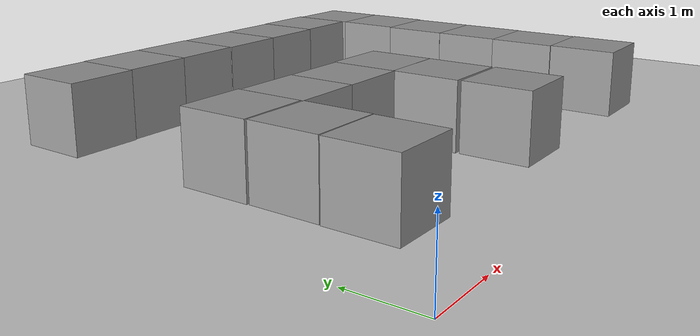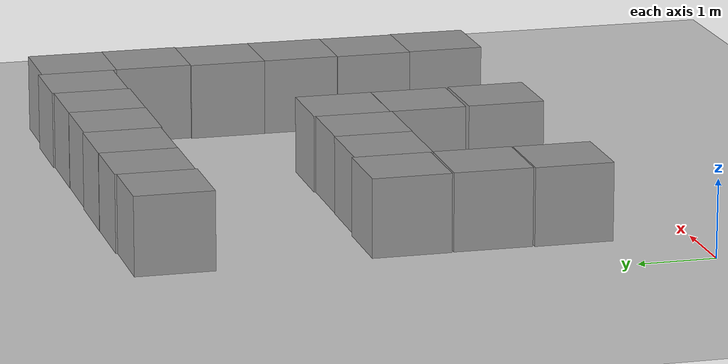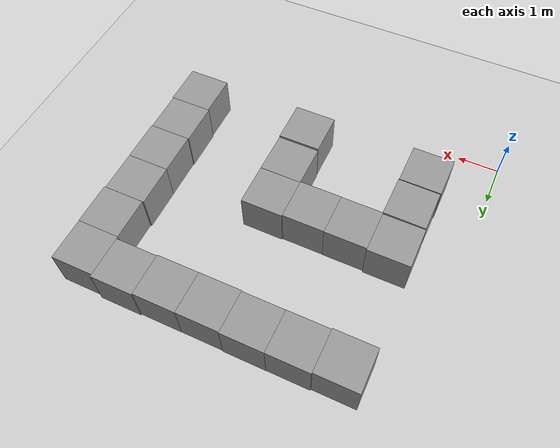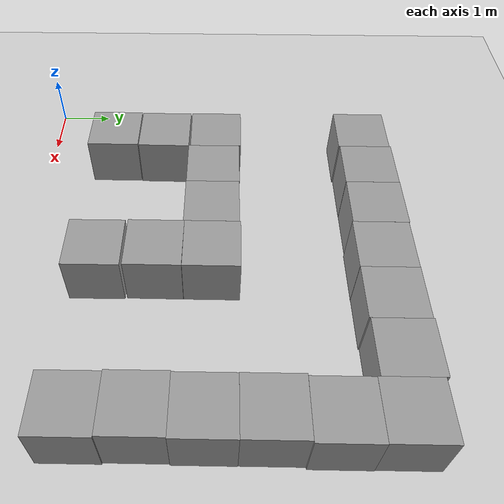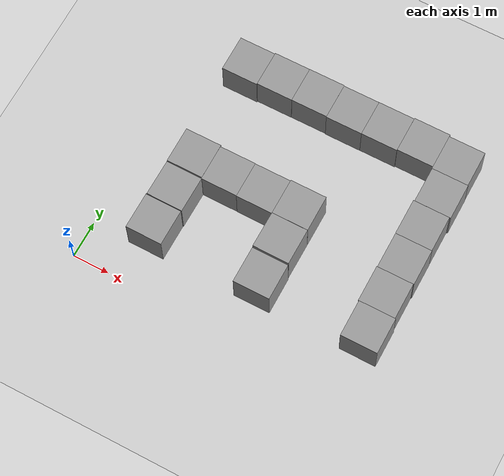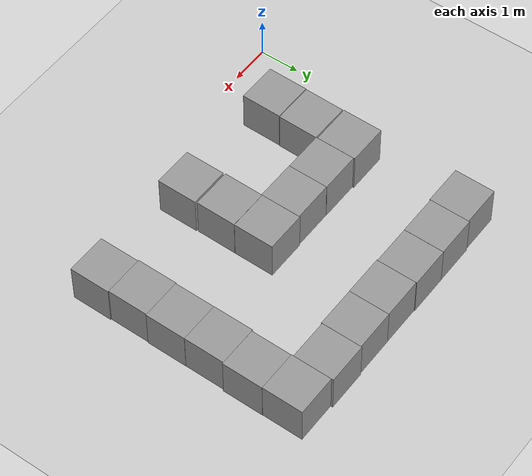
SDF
<sdf version="1.4">
 <world name="default">
  <model name="ground_plane">
   <static>1</static>
   <link name="link">
    <collision name="collision">
     <geometry><plane><normal>0 0 1</normal><size>100 100</size></plane></geometry>
     <surface><friction><ode><mu>100</mu><mu2>50</mu2></ode></friction></surface>
    </collision>
    <visual name="visual">
     <cast_shadows>0</cast_shadows>
     <geometry><plane><normal>0 0 1</normal><size>100 100</size></plane></geometry>
     <material>
      <script><uri>file://media/materials/scripts/gazebo.material</uri><name>Gazebo/Grey</name></script>
     </material>
    </visual>
    <velocity_decay><linear>0</linear><angular>0</angular></velocity_decay>
   </link>
  </model>
  <model name="unit_box_22">
   <pose>1.54245 3.52784 0.5 0 -0 -0.00143</pose>
   <link name="link">
    <inertial>
     <mass>1</mass>
     <inertia><ixx>1</ixx><ixy>0</ixy><ixz>0</ixz><iyy>1</iyy><iyz>0</iyz><izz>1</izz></inertia>
    </inertial>
    <collision name="collision"><geometry><box><size>1 1 1</size></box></geometry></collision>
    <visual name="visual">
     <geometry><box><size>1 1 1</size></box></geometry>
     <material>
      <script><uri>file://media/materials/scripts/gazebo.material</uri><name>Gazebo/Grey</name></script>
     </material>
    </visual>
    <velocity_decay><linear>0</linear><angular>0</angular></velocity_decay>
   </link>
   <static>0</static>
  </model>
  <model name="unit_box_26">
   <pose>1.54774 2.49757 0.5 0 0 -0.011987</pose>
   <link name="link">
    <inertial>
     <mass>1</mass>
     <inertia><ixx>1</ixx><ixy>0</ixy><ixz>0</ixz><iyy>1</iyy><iyz>0</iyz><izz>1</izz></inertia>
    </inertial>
    <collision name="collision"><geometry><box><size>1 1 1</size></box></geometry></collision>
    <visual name="visual">
     <geometry><box><size>1 1 1</size></box></geometry>
     <material>
      <script><uri>file://media/materials/scripts/gazebo.material</uri><name>Gazebo/Grey</name></script>
     </material>
    </visual>
    <velocity_decay><linear>0</linear><angular>0</angular></velocity_decay>
   </link>
   <static>0</static>
  </model>
  <model name="unit_box_27">
   <pose>1.52758 1.47954 0.5 -0 -0 -0.00592</pose>
   <link name="link">
    <inertial>
     <mass>1</mass>
     <inertia><ixx>1</ixx><ixy>0</ixy><ixz>0</ixz><iyy>1</iyy><iyz>0</iyz><izz>1</izz></inertia>
    </inertial>
    <collision name="collision"><geometry><box><size>1 1 1</size></box></geometry></collision>
    <visual name="visual">
     <geometry><box><size>1 1 1</size></box></geometry>
     <material>
      <script><uri>file://media/materials/scripts/gazebo.material</uri><name>Gazebo/Grey</name></script>
     </material>
    </visual>
    <velocity_decay><linear>0</linear><angular>0</angular></velocity_decay>
   </link>
   <static>0</static>
  </model>
  <model name="unit_box_33">
   <pose>2.54273 3.49233 0.5 0 -0 -0.002111</pose>
   <link name="link">
    <inertial>
     <mass>1</mass>
     <inertia><ixx>1</ixx><ixy>0</ixy><ixz>0</ixz><iyy>1</iyy><iyz>0</iyz><izz>1</izz></inertia>
    </inertial>
    <collision name="collision"><geometry><box><size>1 1 1</size></box></geometry></collision>
    <visual name="visual">
     <geometry><box><size>1 1 1</size></box></geometry>
     <material>
      <script><uri>file://media/materials/scripts/gazebo.material</uri><name>Gazebo/Grey</name></script>
     </material>
    </visual>
    <velocity_decay><linear>0</linear><angular>0</angular></velocity_decay>
   </link>
   <static>0</static>
  </model>
  <model name="unit_box_34">
   <pose>3.54273 3.48458 0.5 1e-06 4.1359e-25 -0.002128</pose>
   <link name="link">
    <inertial>
     <mass>1</mass>
     <inertia><ixx>1</ixx><ixy>0</ixy><ixz>0</ixz><iyy>1</iyy><iyz>0</iyz><izz>1</izz></inertia>
    </inertial>
    <collision name="collision"><geometry><box><size>1 1 1</size></box></geometry></collision>
    <visual name="visual">
     <geometry><box><size>1 1 1</size></box></geometry>
     <material>
      <script><uri>file://media/materials/scripts/gazebo.material</uri><name>Gazebo/Grey</name></script>
     </material>
    </visual>
    <velocity_decay><linear>0</linear><angular>0</angular></velocity_decay>
   </link>
   <static>0</static>
  </model>
  <model name="unit_box_35">
   <pose>4.54285 3.50398 0.5 -1e-06 -0 -0.00227</pose>
   <link name="link">
    <inertial>
     <mass>1</mass>
     <inertia><ixx>1</ixx><ixy>0</ixy><ixz>0</ixz><iyy>1</iyy><iyz>0</iyz><izz>1</izz></inertia>
    </inertial>
    <collision name="collision"><geometry><box><size>1 1 1</size></box></geometry></collision>
    <visual name="visual">
     <geometry><box><size>1 1 1</size></box></geometry>
     <material>
      <script><uri>file://media/materials/scripts/gazebo.material</uri><name>Gazebo/Grey</name></script>
     </material>
    </visual>
    <velocity_decay><linear>0</linear><angular>0</angular></velocity_decay>
   </link>
   <static>0</static>
  </model>
  <model name="unit_box_36">
   <pose>4.53877 2.50209 0.5 -0 -0 -0.006055</pose>
   <link name="link">
    <inertial>
     <mass>1</mass>
     <inertia><ixx>1</ixx><ixy>0</ixy><ixz>0</ixz><iyy>1</iyy><iyz>0</iyz><izz>1</izz></inertia>
    </inertial>
    <collision name="collision"><geometry><box><size>1 1 1</size></box></geometry></collision>
    <visual name="visual">
     <geometry><box><size>1 1 1</size></box></geometry>
     <material>
      <script><uri>file://media/materials/scripts/gazebo.material</uri><name>Gazebo/Grey</name></script>
     </material>
    </visual>
    <velocity_decay><linear>0</linear><angular>0</angular></velocity_decay>
   </link>
   <static>0</static>
  </model>
  <model name="unit_box_37">
   <pose>4.55127 1.45925 0.5 0 -0 0</pose>
   <link name="link">
    <inertial>
     <mass>1</mass>
     <inertia><ixx>1</ixx><ixy>0</ixy><ixz>0</ixz><iyy>1</iyy><iyz>0</iyz><izz>1</izz></inertia>
    </inertial>
    <collision name="collision"><geometry><box><size>1 1 1</size></box></geometry></collision>
    <visual name="visual">
     <geometry><box><size>1 1 1</size></box></geometry>
     <material>
      <script><uri>file://media/materials/scripts/gazebo.material</uri><name>Gazebo/Grey</name></script>
     </material>
    </visual>
    <velocity_decay><linear>0</linear><angular>0</angular></velocity_decay>
   </link>
   <static>0</static>
  </model>
  <model name="unit_box_78">
   <pose>1.51534 6.46741 0.5 0 0 -0.000793</pose>
   <link name="link">
    <inertial>
     <mass>1</mass>
     <inertia><ixx>1</ixx><ixy>0</ixy><ixz>0</ixz><iyy>1</iyy><iyz>0</iyz><izz>1</izz></inertia>
    </inertial>
    <collision name="collision"><geometry><box><size>1 1 1</size></box></geometry></collision>
    <visual name="visual">
     <geometry><box><size>1 1 1</size></box></geometry>
     <material>
      <script><uri>file://media/materials/scripts/gazebo.material</uri><name>Gazebo/Grey</name></script>
     </material>
    </visual>
    <velocity_decay><linear>0</linear><angular>0</angular></velocity_decay>
   </link>
   <static>0</static>
  </model>
  <model name="unit_box_79">
   <pose>2.51536 6.49013 0.5 0 -0 -0.0008</pose>
   <link name="link">
    <inertial>
     <mass>1</mass>
     <inertia><ixx>1</ixx><ixy>0</ixy><ixz>0</ixz><iyy>1</iyy><iyz>0</iyz><izz>1</izz></inertia>
    </inertial>
    <collision name="collision"><geometry><box><size>1 1 1</size></box></geometry></collision>
    <visual name="visual">
     <geometry><box><size>1 1 1</size></box></geometry>
     <material>
      <script><uri>file://media/materials/scripts/gazebo.material</uri><name>Gazebo/Grey</name></script>
     </material>
    </visual>
    <velocity_decay><linear>0</linear><angular>0</angular></velocity_decay>
   </link>
   <static>0</static>
  </model>
  <model name="unit_box_80">
   <pose>3.51551 6.49284 0.5 0 -0 -0.000878</pose>
   <link name="link">
    <inertial>
     <mass>1</mass>
     <inertia><ixx>1</ixx><ixy>0</ixy><ixz>0</ixz><iyy>1</iyy><iyz>0</iyz><izz>1</izz></inertia>
    </inertial>
    <collision name="collision"><geometry><box><size>1 1 1</size></box></geometry></collision>
    <visual name="visual">
     <geometry><box><size>1 1 1</size></box></geometry>
     <material>
      <script><uri>file://media/materials/scripts/gazebo.material</uri><name>Gazebo/Grey</name></script>
     </material>
    </visual>
    <velocity_decay><linear>0</linear><angular>0</angular></velocity_decay>
   </link>
   <static>0</static>
  </model>
  <model name="unit_box_81">
   <pose>4.51574 6.47679 0.5 -0 -0 -0.001231</pose>
   <link name="link">
    <inertial>
     <mass>1</mass>
     <inertia><ixx>1</ixx><ixy>0</ixy><ixz>0</ixz><iyy>1</iyy><iyz>0</iyz><izz>1</izz></inertia>
    </inertial>
    <collision name="collision"><geometry><box><size>1 1 1</size></box></geometry></collision>
    <visual name="visual">
     <geometry><box><size>1 1 1</size></box></geometry>
     <material>
      <script><uri>file://media/materials/scripts/gazebo.material</uri><name>Gazebo/Grey</name></script>
     </material>
    </visual>
    <velocity_decay><linear>0</linear><angular>0</angular></velocity_decay>
   </link>
   <static>0</static>
  </model>
  <model name="unit_box_82">
   <pose>5.51576 6.47898 0.5 0 -0 -0.001249</pose>
   <link name="link">
    <inertial>
     <mass>1</mass>
     <inertia><ixx>1</ixx><ixy>0</ixy><ixz>0</ixz><iyy>1</iyy><iyz>0</iyz><izz>1</izz></inertia>
    </inertial>
    <collision name="collision"><geometry><box><size>1 1 1</size></box></geometry></collision>
    <visual name="visual">
     <geometry><box><size>1 1 1</size></box></geometry>
     <material>
      <script><uri>file://media/materials/scripts/gazebo.material</uri><name>Gazebo/Grey</name></script>
     </material>
    </visual>
    <velocity_decay><linear>0</linear><angular>0</angular></velocity_decay>
   </link>
   <static>0</static>
  </model>
  <model name="unit_box_83">
   <pose>6.51585 6.49933 0.5 0 0 -0.001322</pose>
   <link name="link">
    <inertial>
     <mass>1</mass>
     <inertia><ixx>1</ixx><ixy>0</ixy><ixz>0</ixz><iyy>1</iyy><iyz>0</iyz><izz>1</izz></inertia>
    </inertial>
    <collision name="collision"><geometry><box><size>1 1 1</size></box></geometry></collision>
    <visual name="visual">
     <geometry><box><size>1 1 1</size></box></geometry>
     <material>
      <script><uri>file://media/materials/scripts/gazebo.material</uri><name>Gazebo/Grey</name></script>
     </material>
    </visual>
    <velocity_decay><linear>0</linear><angular>0</angular></velocity_decay>
   </link>
   <static>0</static>
  </model>
  <model name="unit_box_85">
   <pose>7.49621 1.4487 0.5 0 -0 -0.000486</pose>
   <link name="link">
    <inertial>
     <mass>1</mass>
     <inertia><ixx>1</ixx><ixy>0</ixy><ixz>0</ixz><iyy>1</iyy><iyz>0</iyz><izz>1</izz></inertia>
    </inertial>
    <collision name="collision"><geometry><box><size>1 1 1</size></box></geometry></collision>
    <visual name="visual">
     <geometry><box><size>1 1 1</size></box></geometry>
     <material>
      <script><uri>file://media/materials/scripts/gazebo.material</uri><name>Gazebo/Grey</name></script>
     </material>
    </visual>
    <velocity_decay><linear>0</linear><angular>0</angular></velocity_decay>
   </link>
   <static>0</static>
  </model>
  <model name="unit_box_86">
   <pose>7.47623 2.44871 0.5 0 -0 -0.000492</pose>
   <link name="link">
    <inertial>
     <mass>1</mass>
     <inertia><ixx>1</ixx><ixy>0</ixy><ixz>0</ixz><iyy>1</iyy><iyz>0</iyz><izz>1</izz></inertia>
    </inertial>
    <collision name="collision"><geometry><box><size>1 1 1</size></box></geometry></collision>
    <visual name="visual">
     <geometry><box><size>1 1 1</size></box></geometry>
     <material>
      <script><uri>file://media/materials/scripts/gazebo.material</uri><name>Gazebo/Grey</name></script>
     </material>
    </visual>
    <velocity_decay><linear>0</linear><angular>0</angular></velocity_decay>
   </link>
   <static>0</static>
  </model>
  <model name="unit_box_87">
   <pose>7.49209 3.44872 0.5 -0 -0 -0.000518</pose>
   <link name="link">
    <inertial>
     <mass>1</mass>
     <inertia><ixx>1</ixx><ixy>0</ixy><ixz>0</ixz><iyy>1</iyy><iyz>0</iyz><izz>1</izz></inertia>
    </inertial>
    <collision name="collision"><geometry><box><size>1 1 1</size></box></geometry></collision>
    <visual name="visual">
     <geometry><box><size>1 1 1</size></box></geometry>
     <material>
      <script><uri>file://media/materials/scripts/gazebo.material</uri><name>Gazebo/Grey</name></script>
     </material>
    </visual>
    <velocity_decay><linear>0</linear><angular>0</angular></velocity_decay>
   </link>
   <static>0</static>
  </model>
  <model name="unit_box_88">
   <pose>7.48931 4.44874 0.5 0 -0 -0.000561</pose>
   <link name="link">
    <inertial>
     <mass>1</mass>
     <inertia><ixx>1</ixx><ixy>0</ixy><ixz>0</ixz><iyy>1</iyy><iyz>0</iyz><izz>1</izz></inertia>
    </inertial>
    <collision name="collision"><geometry><box><size>1 1 1</size></box></geometry></collision>
    <visual name="visual">
     <geometry><box><size>1 1 1</size></box></geometry>
     <material>
      <script><uri>file://media/materials/scripts/gazebo.material</uri><name>Gazebo/Grey</name></script>
     </material>
    </visual>
    <velocity_decay><linear>0</linear><angular>0</angular></velocity_decay>
   </link>
   <static>0</static>
  </model>
  <model name="unit_box_89">
   <pose>7.52215 5.44903 0.5 1e-06 -2.06795e-25 -0.001221</pose>
   <link name="link">
    <inertial>
     <mass>1</mass>
     <inertia><ixx>1</ixx><ixy>0</ixy><ixz>0</ixz><iyy>1</iyy><iyz>0</iyz><izz>1</izz></inertia>
    </inertial>
    <collision name="collision"><geometry><box><size>1 1 1</size></box></geometry></collision>
    <visual name="visual">
     <geometry><box><size>1 1 1</size></box></geometry>
     <material>
      <script><uri>file://media/materials/scripts/gazebo.material</uri><name>Gazebo/Grey</name></script>
     </material>
    </visual>
    <velocity_decay><linear>0</linear><angular>0</angular></velocity_decay>
   </link>
   <static>0</static>
  </model>
  <model name="unit_box_90">
   <pose>7.5158 6.44911 0.5 0 0 -0.001351</pose>
   <link name="link">
    <inertial>
     <mass>1</mass>
     <inertia><ixx>1</ixx><ixy>0</ixy><ixz>0</ixz><iyy>1</iyy><iyz>0</iyz><izz>1</izz></inertia>
    </inertial>
    <collision name="collision"><geometry><box><size>1 1 1</size></box></geometry></collision>
    <visual name="visual">
     <geometry><box><size>1 1 1</size></box></geometry>
     <material>
      <script><uri>file://media/materials/scripts/gazebo.material</uri><name>Gazebo/Grey</name></script>
     </material>
    </visual>
    <velocity_decay><linear>0</linear><angular>0</angular></velocity_decay>
   </link>
   <static>0</static>
  </model>
 </world>
</sdf>
